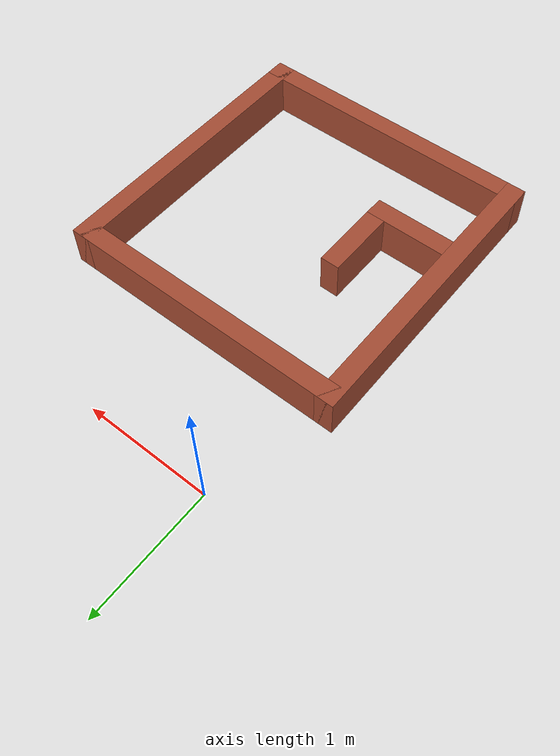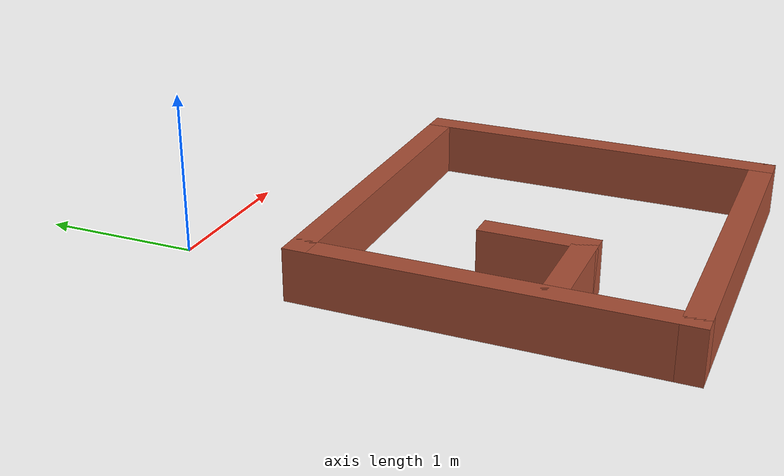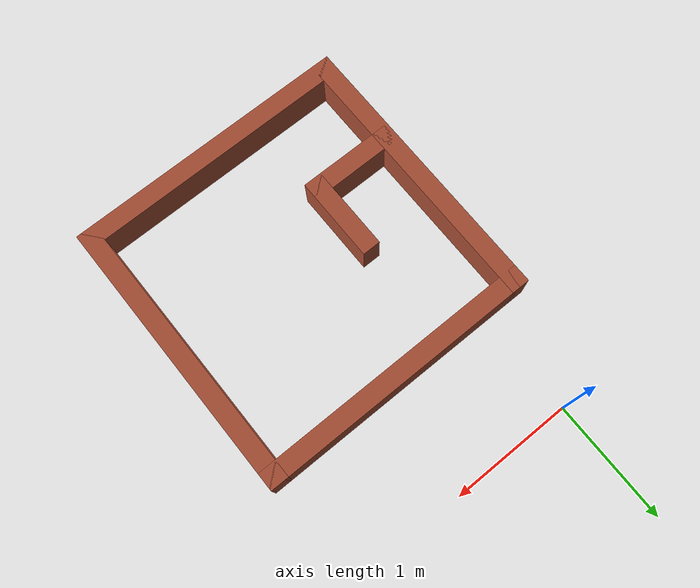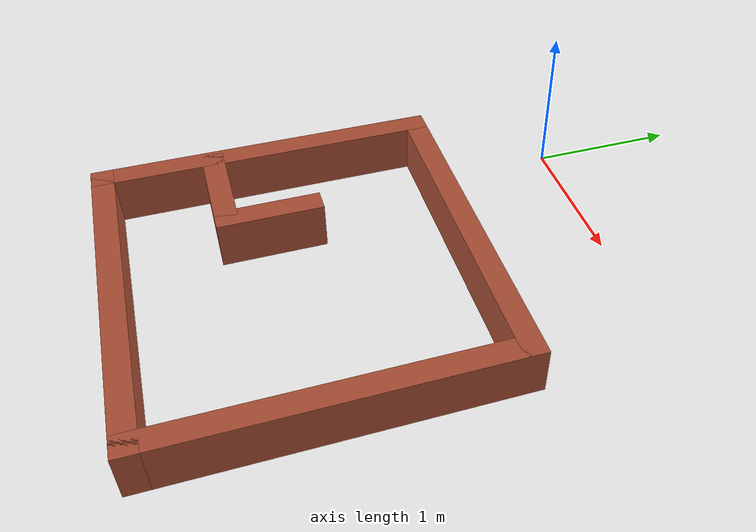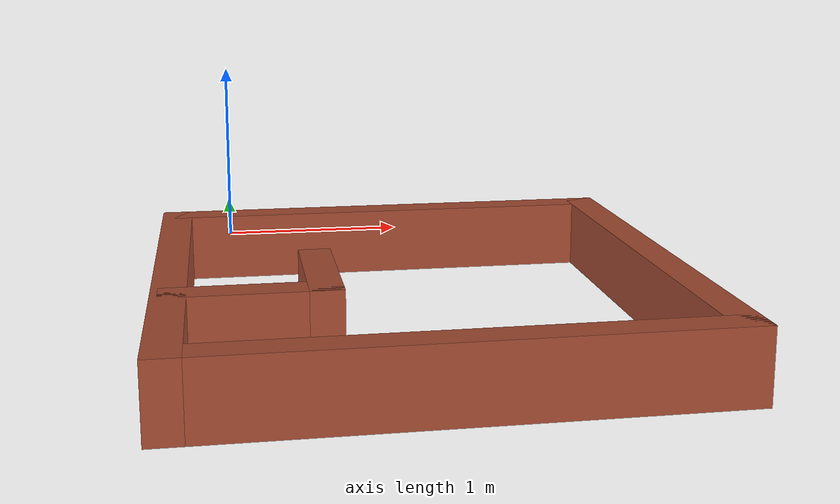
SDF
<?xml version='1.0'?>
<sdf version='1.6'>
  <model name='actual_env'>
    <pose frame=''>0.82 -2.02 0 0 -0 0</pose>
    <link name='Wall_1'>
      <collision name='Wall_1_Collision'>
        <geometry>
          <box>
            <size>2.35 0.15 0.33</size>
          </box>
        </geometry>
        <pose frame=''>0 0 0.165 0 -0 0</pose>
      </collision>
      <visual name='Wall_1_Visual'>
        <pose frame=''>0 0 0.165 0 -0 0</pose>
        <geometry>
          <box>
            <size>2.35 0.15 0.33</size>
          </box>
        </geometry>
        <material>
          <script>
            <uri>file://media/materials/scripts/gazebo.material</uri>
            <name>Gazebo/Bricks</name>
          </script>
          <ambient>1 1 1 1</ambient>
        </material>
        <meta>
          <layer>0</layer>
        </meta>
      </visual>
      <pose frame=''>-1.1 0 0 0 -0 1.5708</pose>
    </link>
    <link name='Wall_10'>
      <collision name='Wall_10_Collision'>
        <geometry>
          <box>
            <size>2.35 0.15 0.33</size>
          </box>
        </geometry>
        <pose frame=''>0 0 0.165 0 -0 0</pose>
      </collision>
      <visual name='Wall_10_Visual'>
        <pose frame=''>0 0 0.165 0 -0 0</pose>
        <geometry>
          <box>
            <size>2.35 0.15 0.33</size>
          </box>
        </geometry>
        <material>
          <script>
            <uri>file://media/materials/scripts/gazebo.material</uri>
            <name>Gazebo/Bricks</name>
          </script>
          <ambient>1 1 1 1</ambient>
        </material>
        <meta>
          <layer>0</layer>
        </meta>
      </visual>
      <pose frame=''>0 -1.1 0 0 -0 3.14159</pose>
    </link>
    <link name='Wall_15'>
      <collision name='Wall_15_Collision'>
        <geometry>
          <box>
            <size>0.77 0.15 0.33</size>
          </box>
        </geometry>
        <pose frame=''>0 0 0.165 0 -0 0</pose>
      </collision>
      <visual name='Wall_15_Visual'>
        <pose frame=''>0 0 0.165 0 -0 0</pose>
        <geometry>
          <box>
            <size>0.77 0.15 0.33</size>
          </box>
        </geometry>
        <material>
          <script>
            <uri>file://media/materials/scripts/gazebo.material</uri>
            <name>Gazebo/Bricks</name>
          </script>
          <ambient>1 1 1 1</ambient>
        </material>
        <meta>
          <layer>0</layer>
        </meta>
      </visual>
      <pose frame=''>-0.76 -0.36 0 0 -0 0</pose>
    </link>
    <link name='Wall_17'>
      <collision name='Wall_17_Collision'>
        <geometry>
          <box>
            <size>0.7 0.15 0.33</size>
          </box>
        </geometry>
        <pose frame=''>0 0 0.165 0 -0 0</pose>
      </collision>
      <visual name='Wall_17_Visual'>
        <pose frame=''>0 0 0.165 0 -0 0</pose>
        <geometry>
          <box>
            <size>0.7 0.15 0.33</size>
          </box>
        </geometry>
        <material>
          <script>
            <uri>file://media/materials/scripts/gazebo.material</uri>
            <name>Gazebo/Bricks</name>
          </script>
          <ambient>1 1 1 1</ambient>
        </material>
        <meta>
          <layer>0</layer>
        </meta>
      </visual>
      <pose frame=''>-0.45 -0.085 0 0 -0 1.5708</pose>
    </link>
    <link name='Wall_6'>
      <collision name='Wall_6_Collision'>
        <geometry>
          <box>
            <size>2.35 0.15 0.33</size>
          </box>
        </geometry>
        <pose frame=''>0 0 0.165 0 -0 0</pose>
      </collision>
      <visual name='Wall_6_Visual'>
        <pose frame=''>0 0 0.165 0 -0 0</pose>
        <geometry>
          <box>
            <size>2.35 0.15 0.33</size>
          </box>
        </geometry>
        <material>
          <script>
            <uri>file://media/materials/scripts/gazebo.material</uri>
            <name>Gazebo/Bricks</name>
          </script>
          <ambient>1 1 1 1</ambient>
        </material>
        <meta>
          <layer>0</layer>
        </meta>
      </visual>
      <pose frame=''>0 1.1 0 0 -0 0</pose>
    </link>
    <link name='Wall_8'>
      <collision name='Wall_8_Collision'>
        <geometry>
          <box>
            <size>2.35 0.15 0.33</size>
          </box>
        </geometry>
        <pose frame=''>0 0 0.165 0 -0 0</pose>
      </collision>
      <visual name='Wall_8_Visual'>
        <pose frame=''>0 0 0.165 0 -0 0</pose>
        <geometry>
          <box>
            <size>2.35 0.15 0.33</size>
          </box>
        </geometry>
        <material>
          <script>
            <uri>file://media/materials/scripts/gazebo.material</uri>
            <name>Gazebo/Bricks</name>
          </script>
          <ambient>1 1 1 1</ambient>
        </material>
        <meta>
          <layer>0</layer>
        </meta>
      </visual>
      <pose frame=''>1.1 0 0 0 0 -1.5708</pose>
    </link>
    <static>1</static>
  </model>
</sdf>
